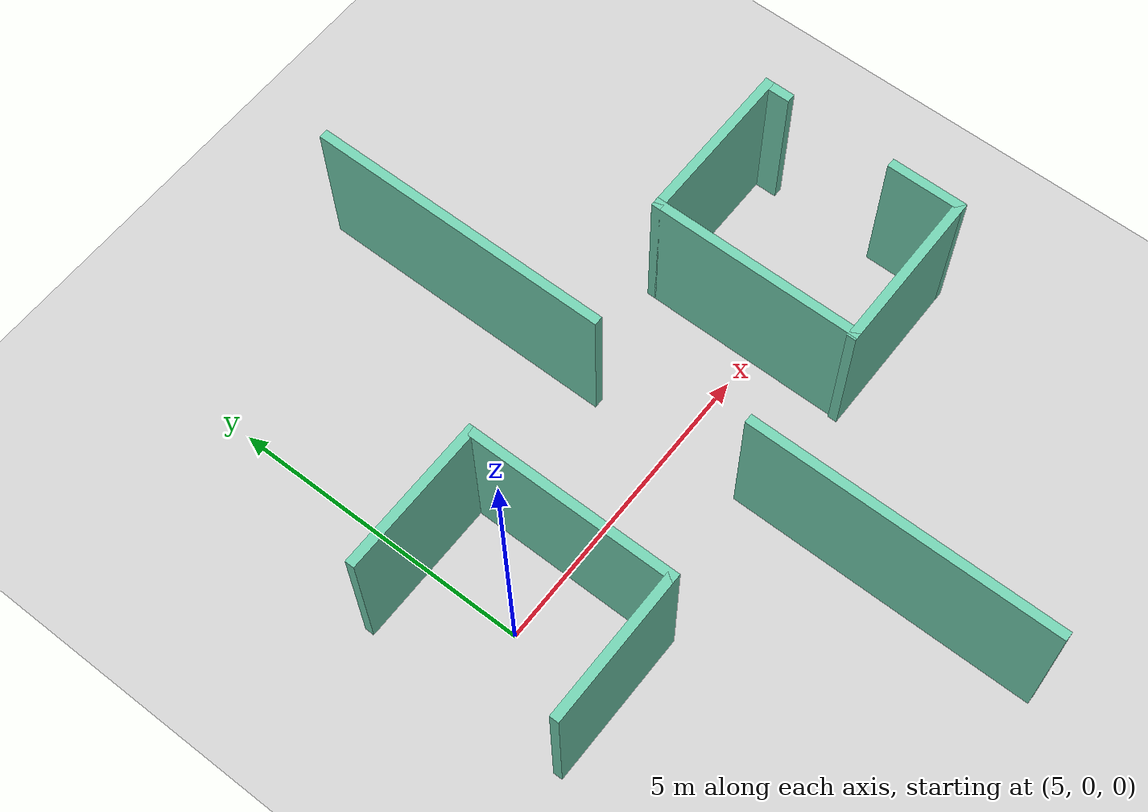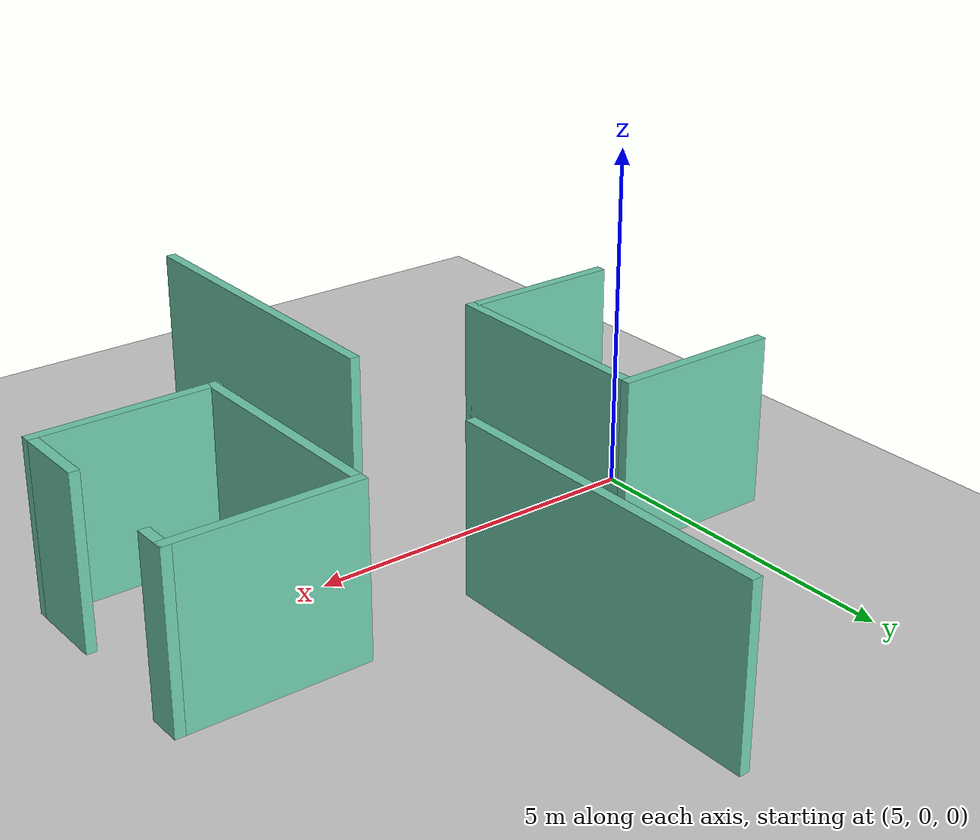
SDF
<sdf version="1.6">
 <world name="default">
  <light name="sun" type="directional">
   <pose>0 0 10 0 -0 0</pose>
   <diffuse>0.8 0.8 0.8 1</diffuse>
   <specular>0.2 0.2 0.2 1</specular>
   <attenuation>
    <range>1000</range>
    <constant>0.9</constant>
    <linear>0.01</linear>
    <quadratic>0.001</quadratic>
   </attenuation>
   <direction>-0.5 0.1 -0.9</direction>
  </light>
  <model name="ground_plane">
   <static>1</static>
   <link name="link">
    <collision name="collision">
     <geometry><plane><normal>0 0 1</normal><size>100 100</size></plane></geometry>
     <surface><friction><ode><mu>100</mu><mu2>50</mu2></ode></friction></surface>
    </collision>
    <visual name="visual">
     <cast_shadows>0</cast_shadows>
     <geometry><plane><normal>0 0 1</normal><size>100 100</size></plane></geometry>
     <material>
      <script><uri>file://media/materials/scripts/gazebo.material</uri><name>Gazebo/Grey</name></script>
     </material>
    </visual>
   </link>
  </model>
  <gravity>0 0 -9.8</gravity>
  <magnetic_field>6e-06 2.3e-05 -4.2e-05</magnetic_field>
  <atmosphere type="adiabatic"/>
  <physics name="default_physics" default="0" type="ode">
   <max_step_size>0.001</max_step_size>
   <real_time_factor>1</real_time_factor>
   <real_time_update_rate>1000</real_time_update_rate>
  </physics>
  <scene><ambient>0.4 0.4 0.4 1</ambient><background>0.7 0.7 0.7 1</background><shadows>1</shadows></scene>
  <spherical_coordinates>
   <surface_model>EARTH_WGS84</surface_model>
   <latitude_deg>0</latitude_deg>
   <longitude_deg>0</longitude_deg>
   <elevation>0</elevation>
   <heading_deg>0</heading_deg>
  </spherical_coordinates>
  <model name="trap_new2">
   <pose>8.53763 0.076144 0 0 0 -1.57136</pose>
   <link name="Wall_0">
    <collision name="Wall_0_Collision">
     <geometry><box><size>2.5 0.15 2.5</size></box></geometry>
     <pose>0 0 1.25 0 -0 0</pose>
    </collision>
    <visual name="Wall_0_Visual">
     <pose>0 0 1.25 0 -0 0</pose>
     <geometry><box><size>2.5 0.15 2.5</size></box></geometry>
     <material>
      <script><uri>file://media/materials/scripts/gazebo.material</uri><name>Gazebo/Grey</name></script>
      <ambient>0.435294 0.796078 0.67451 1</ambient>
     </material>
     <meta><layer>0</layer></meta>
    </visual>
    <pose>-1.56 -3.47826 0 0 -0 1.5708</pose>
   </link>
   <link name="Wall_1">
    <collision name="Wall_1_Collision">
     <geometry><box><size>3.5 0.15 2.5</size></box></geometry>
     <pose>0 0 1.25 0 -0 0</pose>
    </collision>
    <visual name="Wall_1_Visual">
     <pose>0 0 1.25 0 -0 0</pose>
     <geometry><box><size>3.5 0.15 2.5</size></box></geometry>
     <material>
      <script><uri>file://media/materials/scripts/gazebo.material</uri><name>Gazebo/Grey</name></script>
      <ambient>0.435294 0.796078 0.67451 1</ambient>
     </material>
     <meta><layer>0</layer></meta>
    </visual>
    <pose>0.115 -2.30326 0 0 -0 0</pose>
   </link>
   <link name="Wall_10">
    <collision name="Wall_10_Collision">
     <geometry><box><size>2.75 0.15 2.5</size></box></geometry>
     <pose>0 0 1.25 0 -0 0</pose>
    </collision>
    <visual name="Wall_10_Visual">
     <pose>0 0 1.25 0 -0 0</pose>
     <geometry><box><size>2.75 0.15 2.5</size></box></geometry>
     <material>
      <script><uri>file://media/materials/scripts/gazebo.material</uri><name>Gazebo/Grey</name></script>
      <ambient>0.435294 0.796078 0.67451 1</ambient>
     </material>
     <meta><layer>0</layer></meta>
    </visual>
    <pose>1.62169 3.32267 0 0 -0 1.5708</pose>
   </link>
   <link name="Wall_11">
    <collision name="Wall_11_Collision">
     <geometry><box><size>1.25 0.15 2.5</size></box></geometry>
     <pose>0 0 1.25 0 -0 0</pose>
    </collision>
    <visual name="Wall_11_Visual">
     <pose>0 0 1.25 0 -0 0</pose>
     <geometry><box><size>1.25 0.15 2.5</size></box></geometry>
     <material>
      <script><uri>file://media/materials/scripts/gazebo.material</uri><name>Gazebo/Grey</name></script>
      <ambient>0.435294 0.796078 0.67451 1</ambient>
     </material>
     <meta><layer>0</layer></meta>
    </visual>
    <pose>1.07169 4.62267 0 0 -0 3.14159</pose>
   </link>
   <link name="Wall_13">
    <collision name="Wall_13_Collision">
     <geometry><box><size>0.5 0.15 2.5</size></box></geometry>
     <pose>0 0 1.25 0 -0 0</pose>
    </collision>
    <visual name="Wall_13_Visual">
     <pose>0 0 1.25 0 -0 0</pose>
     <geometry><box><size>0.5 0.15 2.5</size></box></geometry>
     <material>
      <script><uri>file://media/materials/scripts/gazebo.material</uri><name>Gazebo/Grey</name></script>
      <ambient>0.435294 0.796078 0.67451 1</ambient>
     </material>
     <meta><layer>0</layer></meta>
    </visual>
    <pose>-1.55331 4.65326 0 0 -0 0</pose>
   </link>
   <link name="Wall_2">
    <collision name="Wall_2_Collision">
     <geometry><box><size>2.5 0.15 2.5</size></box></geometry>
     <pose>0 0 1.25 0 -0 0</pose>
    </collision>
    <visual name="Wall_2_Visual">
     <pose>0 0 1.25 0 -0 0</pose>
     <geometry><box><size>2.5 0.15 2.5</size></box></geometry>
     <material>
      <script><uri>file://media/materials/scripts/gazebo.material</uri><name>Gazebo/Grey</name></script>
      <ambient>0.435294 0.796078 0.67451 1</ambient>
     </material>
     <meta><layer>0</layer></meta>
    </visual>
    <pose>1.79 -3.47826 0 0 -0 -1.5708</pose>
   </link>
   <link name="Wall_4">
    <collision name="Wall_4_Collision">
     <geometry><box><size>5 0.15 2.5</size></box></geometry>
     <pose>0 0 1.25 0 -0 0</pose>
    </collision>
    <visual name="Wall_4_Visual">
     <pose>0 0 1.25 0 -0 0</pose>
     <geometry><box><size>5 0.15 2.5</size></box></geometry>
     <material>
      <script><uri>file://media/materials/scripts/gazebo.material</uri><name>Gazebo/Grey</name></script>
      <ambient>0.435294 0.796078 0.67451 1</ambient>
     </material>
     <meta><layer>0</layer></meta>
    </visual>
    <pose>-3.735 0.046739 0 0 -0 0</pose>
   </link>
   <link name="Wall_6">
    <collision name="Wall_6_Collision">
     <geometry><box><size>5 0.15 2.5</size></box></geometry>
     <pose>0 0 1.25 0 -0 0</pose>
    </collision>
    <visual name="Wall_6_Visual">
     <pose>0 0 1.25 0 -0 0</pose>
     <geometry><box><size>5 0.15 2.5</size></box></geometry>
     <material>
      <script><uri>file://media/materials/scripts/gazebo.material</uri><name>Gazebo/Grey</name></script>
      <ambient>0.435294 0.796078 0.67451 1</ambient>
     </material>
     <meta><layer>0</layer></meta>
    </visual>
    <pose>3.735 0.106739 0 0 -0 0</pose>
   </link>
   <link name="Wall_8">
    <collision name="Wall_8_Collision">
     <geometry><box><size>2.75 0.15 2.5</size></box></geometry>
     <pose>0 0 1.25 0 -0 0</pose>
    </collision>
    <visual name="Wall_8_Visual">
     <pose>0 0 1.25 0 -0 0</pose>
     <geometry><box><size>2.75 0.15 2.5</size></box></geometry>
     <material>
      <script><uri>file://media/materials/scripts/gazebo.material</uri><name>Gazebo/Grey</name></script>
      <ambient>0.435294 0.796078 0.67451 1</ambient>
     </material>
     <meta><layer>0</layer></meta>
    </visual>
    <pose>-1.72831 3.35326 0 0 -0 -1.5708</pose>
   </link>
   <link name="Wall_9">
    <collision name="Wall_9_Collision">
     <geometry><box><size>3.5 0.15 2.5</size></box></geometry>
     <pose>0 0 1.25 0 -0 0</pose>
    </collision>
    <visual name="Wall_9_Visual">
     <pose>0 0 1.25 0 -0 0</pose>
     <geometry><box><size>3.5 0.15 2.5</size></box></geometry>
     <material>
      <script><uri>file://media/materials/scripts/gazebo.material</uri><name>Gazebo/Grey</name></script>
      <ambient>0.435294 0.796078 0.67451 1</ambient>
     </material>
     <meta><layer>0</layer></meta>
    </visual>
    <pose>-0.053309 2.05326 0 0 -0 0</pose>
   </link>
   <static>1</static>
  </model>
  <audio><device>default</device></audio>
 </world>
</sdf>
